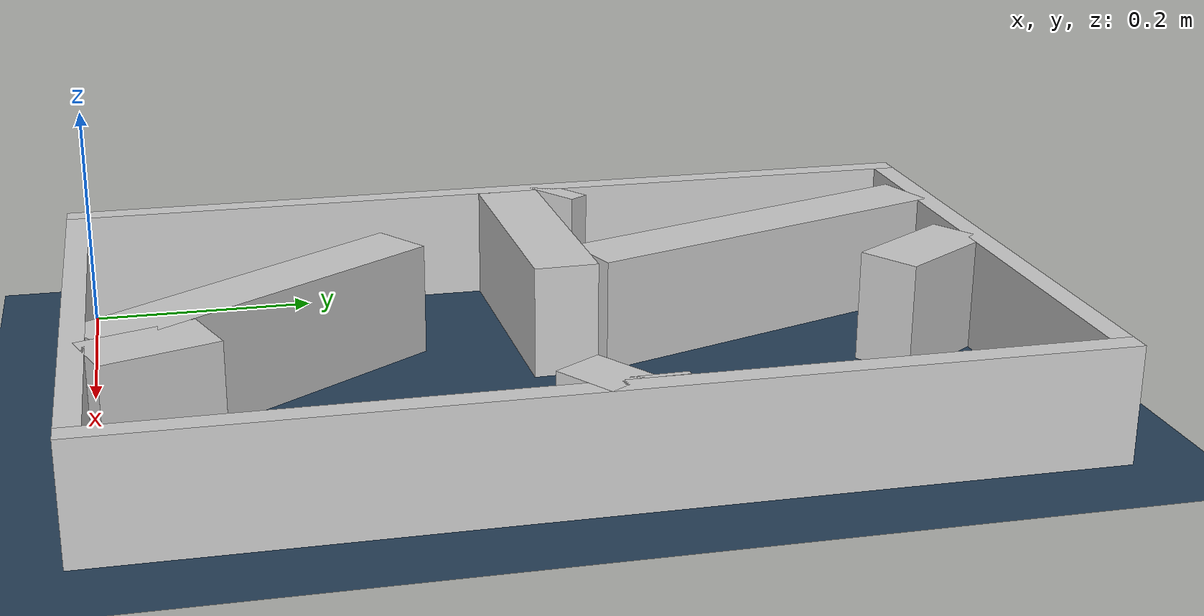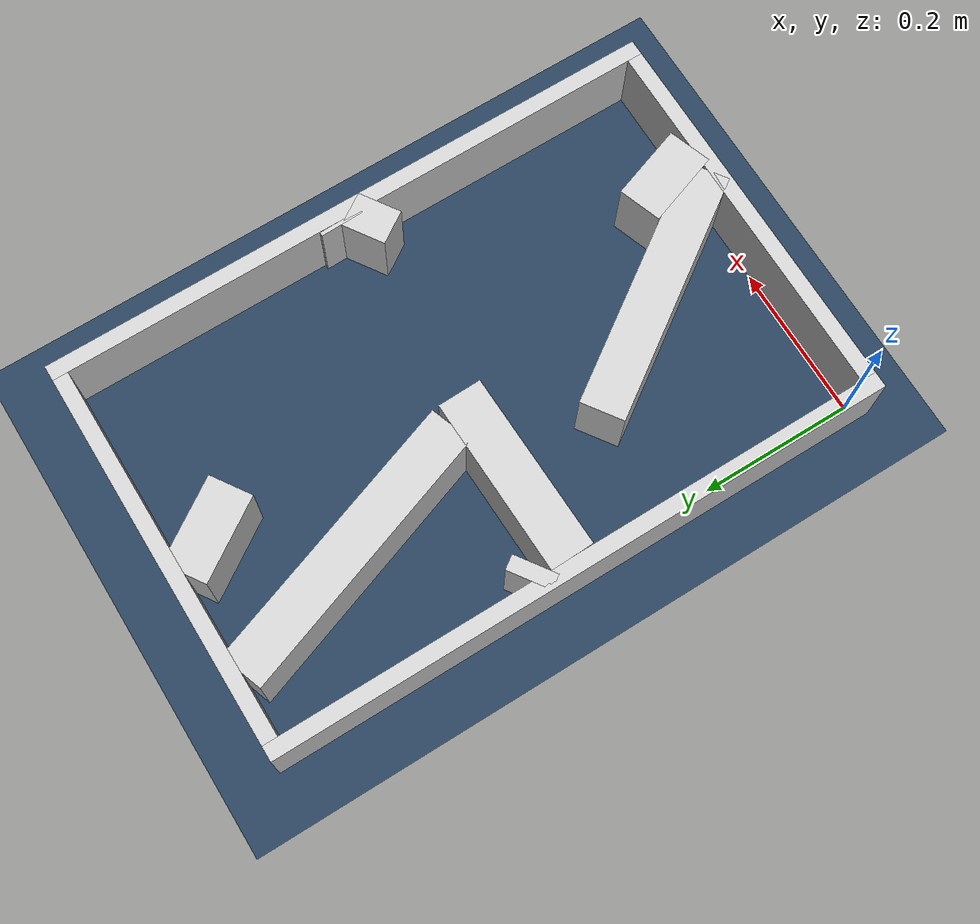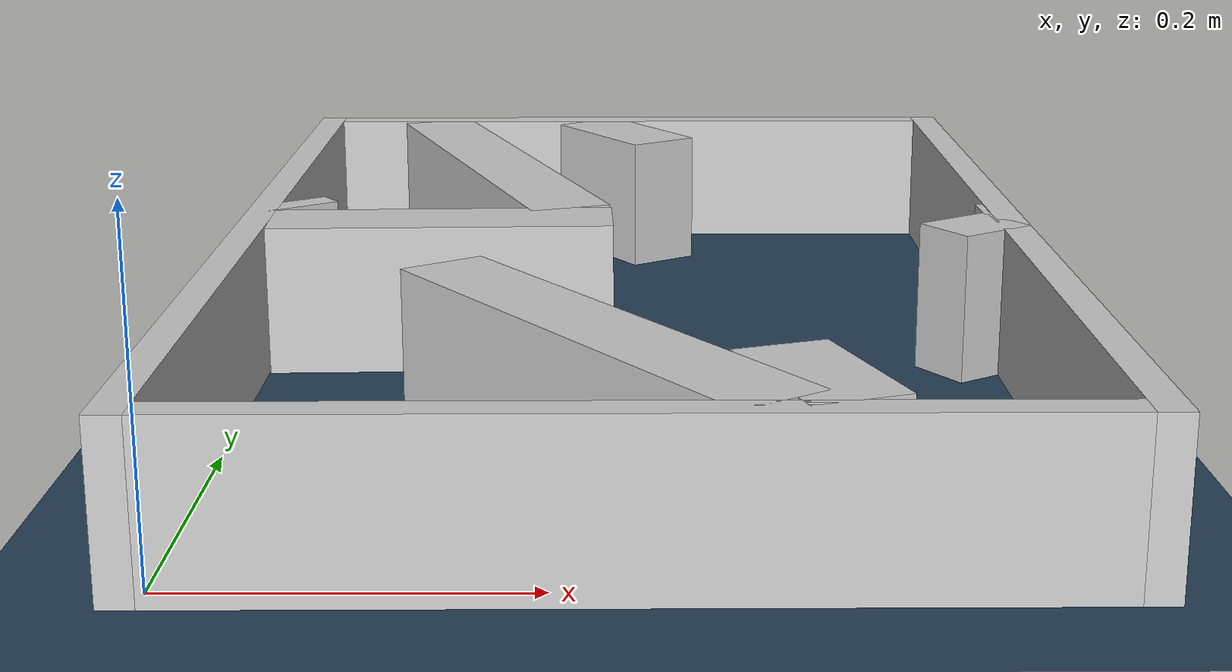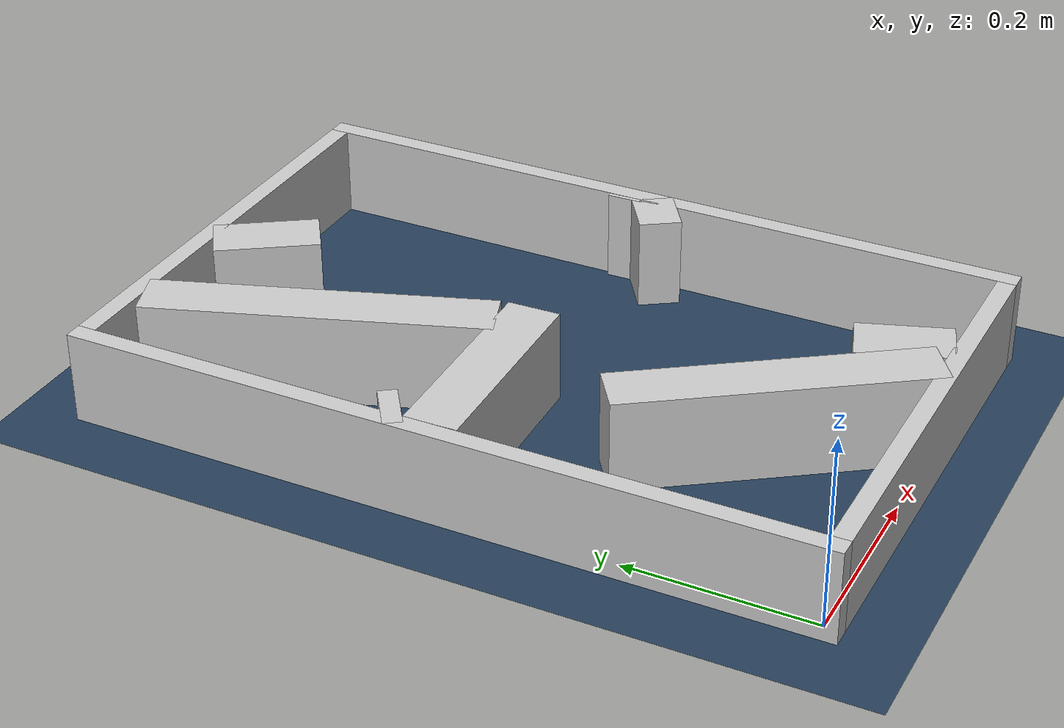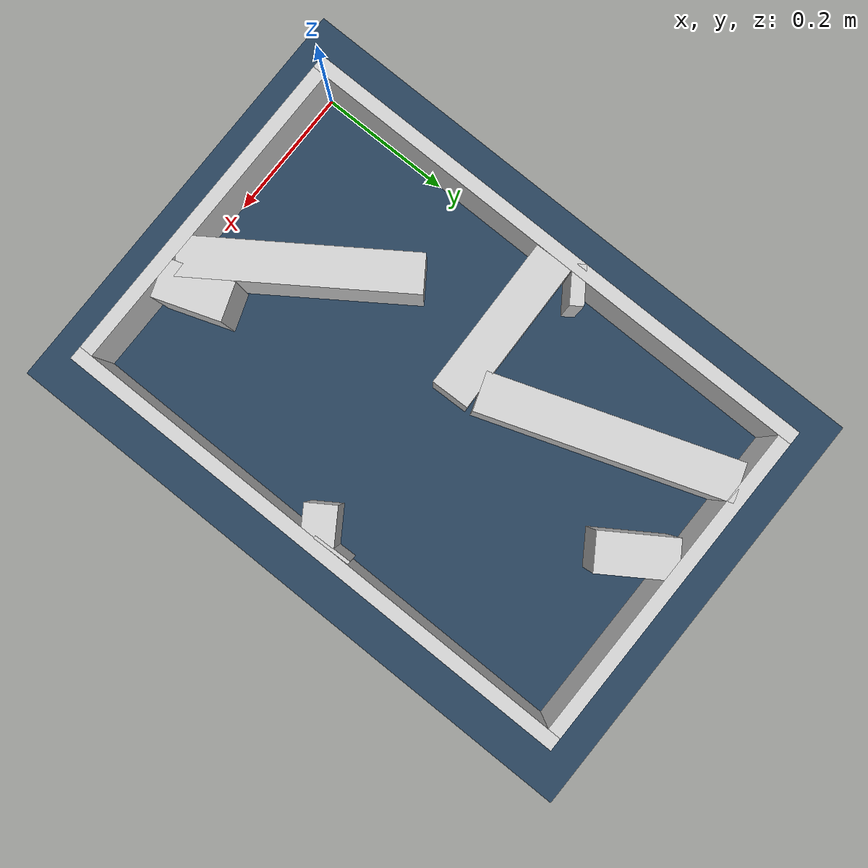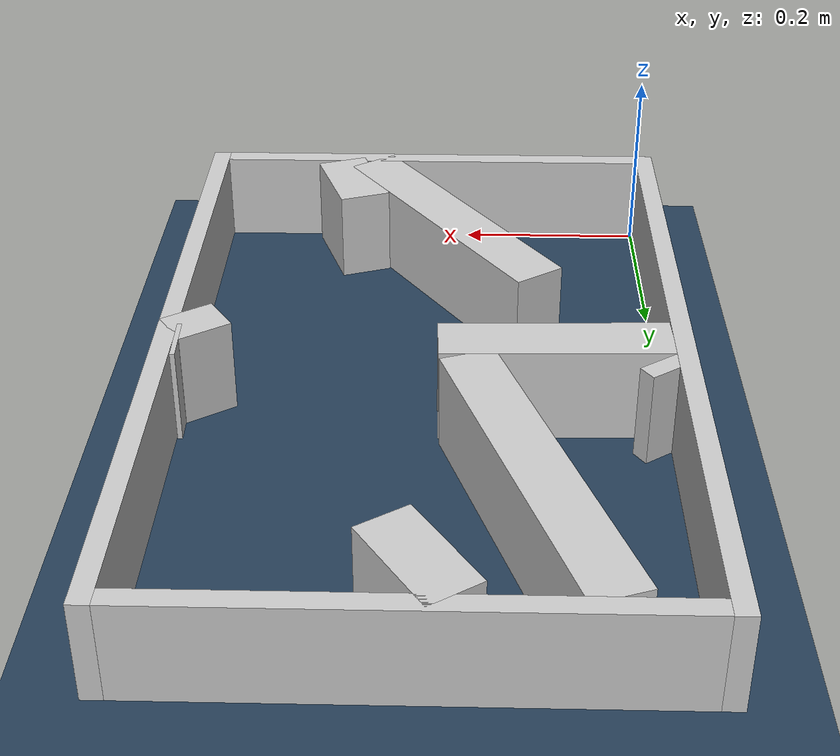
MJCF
<?xml version="1.0" ?>
<mujoco model="generated_real_template">
  <compiler angle="degree"/>
  <option timestep="0.002" integrator="implicitfast" iterations="100" cone="elliptic"/>
  <default>
    <geom density="1"/>
  </default>
  <asset>
    <texture builtin="gradient" height="3072" rgb1="0.3 0.5 0.7" rgb2="0 0 0" type="skybox" width="512"/>
    <texture builtin="checker" height="300" mark="edge" markrgb="0.8 0.8 0.8" name="groundplane" rgb1="0.2 0.3 0.4" rgb2="0.1 0.2 0.3" type="2d" width="300"/>
    <material name="groundplane" reflectance="0.2" texrepeat="5 5" texture="groundplane" texuniform="true"/>
  </asset>
  <worldbody>
    <light dir="0 0 -1" directional="true" pos="0 0 1.5"/>
    <geom name="floor" type="plane" condim="4" friction="0.5 0.005 0.001" material="groundplane" size="0 0 0.05"/>
    <body name="walls">
      <geom name="wall_boundary_left" type="box" condim="4" friction="1.0 0.005 0.0001" rgba="0.8 0.8 0.8 1" pos="-0.010000 0.387500 0.050000" euler="0 0 0.000000" size="0.010000 0.407500 0.050000"/>
      <geom name="wall_boundary_right" type="box" condim="4" friction="1.0 0.005 0.0001" rgba="0.8 0.8 0.8 1" pos="0.500000 0.387500 0.050000" euler="0 0 0.000000" size="0.010000 0.407500 0.050000"/>
      <geom name="wall_boundary_bottom" type="box" condim="4" friction="1.0 0.005 0.0001" rgba="0.8 0.8 0.8 1" pos="0.245000 -0.010000 0.050000" euler="0 0 0.000000" size="0.245000 0.010000 0.050000"/>
      <geom name="wall_boundary_top" type="box" condim="4" friction="1.0 0.005 0.0001" rgba="0.8 0.8 0.8 1" pos="0.245000 0.785000 0.050000" euler="0 0 0.000000" size="0.245000 0.010000 0.050000"/>
      <geom name="wall_inner_1_1" type="box" condim="4" friction="1.0 0.005 0.0001" rgba="0.8 0.8 0.8 1" pos="0.009078 0.444149 0.050000" euler="0 0 -55.374453" size="0.009899 0.028500 0.050000"/>
      <geom name="wall_inner_1_2" type="box" condim="4" friction="1.0 0.005 0.0001" rgba="0.8 0.8 0.8 1" pos="0.220742 0.137617 0.050000" euler="0 0 -55.374453" size="0.167238 0.028500 0.050000"/>
      <geom name="wall_inner_2_1" type="box" condim="4" friction="1.0 0.005 0.0001" rgba="0.8 0.8 0.8 1" pos="0.115561 0.399730 0.050000" euler="0 0 1.616168" size="0.115607 0.028500 0.050000"/>
      <geom name="wall_inner_2_2" type="box" condim="4" friction="1.0 0.005 0.0001" rgba="0.8 0.8 0.8 1" pos="0.487507 0.410225 0.050000" euler="0 0 1.616168" size="0.002494 0.028500 0.050000"/>
      <geom name="wall_inner_3_1" type="box" condim="4" friction="1.0 0.005 0.0001" rgba="0.8 0.8 0.8 1" pos="0.336579 0.047581 0.050000" euler="0 0 109.306361" size="0.050416 0.028500 0.050000"/>
      <geom name="wall_inner_3_2" type="box" condim="4" friction="1.0 0.005 0.0001" rgba="0.8 0.8 0.8 1" pos="0.142089 0.602762 0.050000" euler="0 0 109.306361" size="0.182501 0.028500 0.050000"/>
      <geom name="wall_inner_4_1" type="box" condim="4" friction="1.0 0.005 0.0001" rgba="0.8 0.8 0.8 1" pos="0.473583 0.376703 0.050000" euler="0 0 123.457774" size="0.022924 0.028500 0.050000"/>
      <geom name="wall_inner_4_2" type="box" condim="4" friction="1.0 0.005 0.0001" rgba="0.8 0.8 0.8 1" pos="0.241635 0.727700 0.050000" euler="0 0 123.457774" size="0.056695 0.028500 0.050000"/>
    </body>
  </worldbody>
</mujoco>
